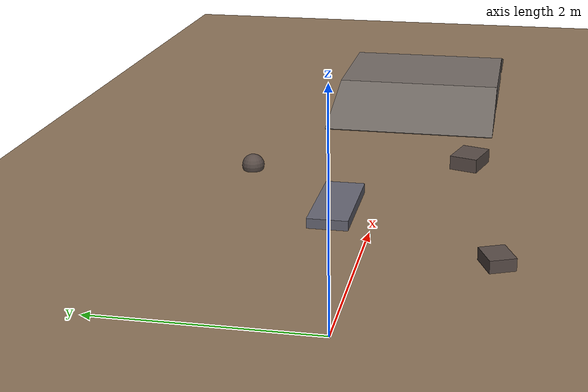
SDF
<sdf version="1.11">
 <world name="rover_test">
  <physics name="1ms" type="dart">
   <max_step_size>0.001</max_step_size>
   <real_time_factor>1</real_time_factor>
  </physics>
  <plugin filename="gz-sim-physics-system" name="gz::sim::systems::Physics"/>
  <plugin filename="gz-sim-user-commands-system" name="gz::sim::systems::UserCommands"/>
  <plugin filename="gz-sim-scene-broadcaster-system" name="gz::sim::systems::SceneBroadcaster"/>
  <plugin filename="gz-sim-imu-system" name="gz::sim::systems::Imu"/>
  <plugin filename="gz-sim-navsat-system" name="gz::sim::systems::NavSat"/>
  <plugin filename="gz-sim-particle-emitter-system" name="gz::sim::systems::ParticleEmitter"/>
  <plugin filename="gz-sim-sensors-system" name="gz::sim::systems::Sensors">
   <render_engine>ogre2</render_engine>
  </plugin>
  <scene><ambient>0.5 0.48 0.46 1</ambient><background>0.62 0.74 0.9 1</background></scene>
  <spherical_coordinates>
   <surface_model>EARTH_WGS84</surface_model>
   <world_frame_orientation>ENU</world_frame_orientation>
   <latitude_deg>38.4064</latitude_deg>
   <longitude_deg>-110.7919</longitude_deg>
   <elevation>1373</elevation>
   <heading_deg>0</heading_deg>
  </spherical_coordinates>
  <light type="directional" name="sun">
   <pose>0 0 10 0 0 0</pose>
   <diffuse>0.9 0.9 0.9 1</diffuse>
   <specular>0.3 0.3 0.3 1</specular>
   <direction>-0.5 0.2 -0.9</direction>
  </light>
  <model name="ground">
   <static>true</static>
   <link name="link">
    <collision name="collision">
     <geometry><plane><normal>0 0 1</normal><size>100 100</size></plane></geometry>
    </collision>
    <visual name="visual">
     <geometry><plane><normal>0 0 1</normal><size>100 100</size></plane></geometry>
     <material><ambient>0.55 0.45 0.35 1</ambient><diffuse>0.55 0.45 0.35 1</diffuse></material>
    </visual>
   </link>
  </model>
  <model name="step_left">
   <static>true</static>
   <pose>2.5 0.4 0.05 0 0 0</pose>
   <link name="link">
    <collision name="collision"><geometry><box><size>1.0 0.4 0.1</size></box></geometry></collision>
    <visual name="visual">
     <geometry><box><size>1.0 0.4 0.1</size></box></geometry>
     <material><ambient>0.4 0.4 0.45 1</ambient><diffuse>0.4 0.4 0.45 1</diffuse></material>
    </visual>
   </link>
  </model>
  <model name="ramp">
   <static>true</static>
   <link name="up">
    <pose>5.58569 0 0.053407 0 -0.261799 0</pose>
    <collision name="collision"><geometry><box><size>1.159 2.0 0.2</size></box></geometry></collision>
    <visual name="visual">
     <geometry><box><size>1.159 2.0 0.2</size></box></geometry>
     <material><ambient>0.45 0.42 0.4 1</ambient><diffuse>0.45 0.42 0.4 1</diffuse></material>
    </visual>
   </link>
   <link name="platform">
    <pose>6.869615 0 0.15 0 0 0</pose>
    <collision name="collision"><geometry><box><size>1.5 2.0 0.3</size></box></geometry></collision>
    <visual name="visual">
     <geometry><box><size>1.5 2.0 0.3</size></box></geometry>
     <material><ambient>0.45 0.42 0.4 1</ambient><diffuse>0.45 0.42 0.4 1</diffuse></material>
    </visual>
   </link>
   <link name="down">
    <pose>8.153541 0 0.053407 0 0.261799 0</pose>
    <collision name="collision"><geometry><box><size>1.159 2.0 0.2</size></box></geometry></collision>
    <visual name="visual">
     <geometry><box><size>1.159 2.0 0.2</size></box></geometry>
     <material><ambient>0.45 0.42 0.4 1</ambient><diffuse>0.45 0.42 0.4 1</diffuse></material>
    </visual>
   </link>
  </model>
  <model name="rocks">
   <static>true</static>
   <link name="rock_1">
    <pose>1.5 -1.2 0.06 0 0 0.4</pose>
    <collision name="collision"><geometry><box><size>0.3 0.25 0.12</size></box></geometry></collision>
    <visual name="visual">
     <geometry><box><size>0.3 0.25 0.12</size></box></geometry>
     <material><ambient>0.35 0.3 0.28 1</ambient><diffuse>0.35 0.3 0.28 1</diffuse></material>
    </visual>
   </link>
   <link name="rock_2">
    <pose>3.5 1.5 0.04 0 0 0</pose>
    <collision name="collision"><geometry><sphere><radius>0.12</radius></sphere></geometry></collision>
    <visual name="visual">
     <geometry><sphere><radius>0.12</radius></sphere></geometry>
     <material><ambient>0.35 0.3 0.28 1</ambient><diffuse>0.35 0.3 0.28 1</diffuse></material>
    </visual>
   </link>
   <link name="rock_3">
    <pose>4.0 -0.8 0.075 0 0 -0.3</pose>
    <collision name="collision"><geometry><box><size>0.4 0.3 0.15</size></box></geometry></collision>
    <visual name="visual">
     <geometry><box><size>0.4 0.3 0.15</size></box></geometry>
     <material><ambient>0.35 0.3 0.28 1</ambient><diffuse>0.35 0.3 0.28 1</diffuse></material>
    </visual>
   </link>
  </model>
 </world>
</sdf>
